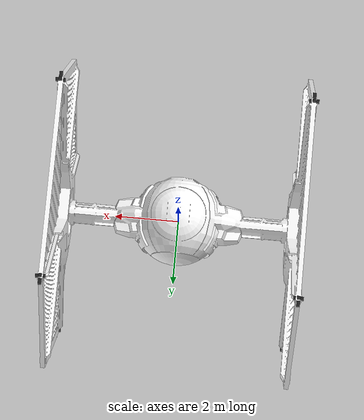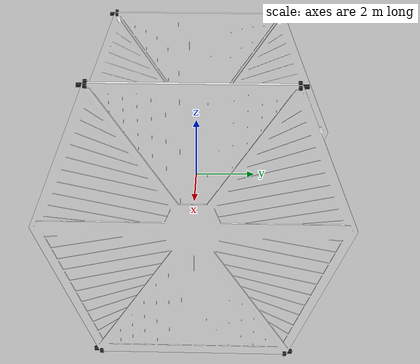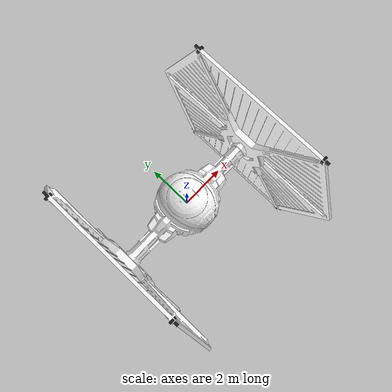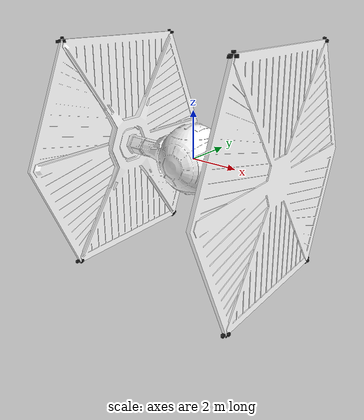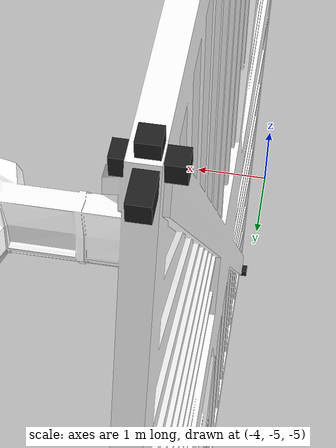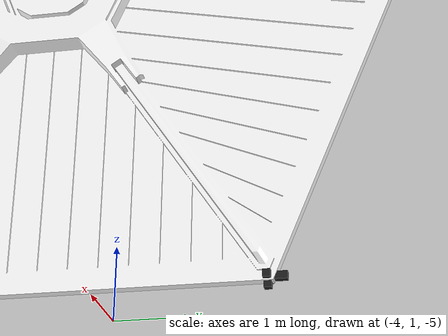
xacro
<?xml version="1.0"?>
<robot xmlns:xacro="http://www.ros.org/wiki/xacro" name="tie_fighter">

 <xacro:include filename="$(find gazebo_spaceship)/urdf/thruster.urdf.xacro"/>

    <material name="white">
      <color rgba="1 1 1 1"/>
    </material>

    <link name="base_link">
      <visual>
        <geometry>
          <mesh filename="package://gazebo_spaceship/meshes/tie_fighter.stl" />
        </geometry>
        <material name="white"/>
      </visual>
      <collision>
        <geometry>
          <mesh filename="package://gazebo_spaceship/meshes/tie_fighter.stl" />
        </geometry>
      </collision>
      <inertial>
         <mass value="1.0"/>
         <inertia
        ixx="1.0" ixy="0.0" ixz="0.0"
        iyy="1.0" iyz="0.0"
        izz="1.0"/>
      </inertial>
    </link>

    <xacro:thruster name="top_left_front_thruster" thruster_name="0">
      <origin xyz="3.8 3 4.6" rpy="0 0 0"/>
    </xacro:thruster>

    <xacro:thruster name="top_left_back_thruster" thruster_name="1">
      <origin xyz="3.8 -3 4.6" rpy="0 0 0"/>
    </xacro:thruster>

    <xacro:thruster name="top_right_front_thruster" thruster_name="2">
      <origin xyz="-3.8 3 4.6" rpy="0 0 0"/>
    </xacro:thruster>

    <xacro:thruster name="top_right_back_thruster" thruster_name="4">
      <origin xyz="-3.8 -3 4.6" rpy="0 0 0"/>
    </xacro:thruster>

    <xacro:thruster name="bottom_left_front_thruster" thruster_name="5">
      <origin xyz="3.8 3 -4.6" rpy="0 ${pi} 0"/>
    </xacro:thruster>

    <xacro:thruster name="bottom_left_back_thruster" thruster_name="6">
      <origin xyz="3.8 -3 -4.6" rpy="0 ${pi} 0"/>
    </xacro:thruster>

    <xacro:thruster name="bottom_right_front_thruster" thruster_name="6">
      <origin xyz="-3.8 3 -4.6" rpy="0 ${pi} 0"/>
    </xacro:thruster>

    <xacro:thruster name="bottom_right_back_thruster" thruster_name="7">
      <origin xyz="-3.8 -3 -4.6" rpy="0 ${pi} 0"/>
    </xacro:thruster>

    <xacro:thruster name="side_top_left_front_thruster" thruster_name="8">
      <origin xyz="3.8 3 4.6" rpy="0 ${pi/2} 0"/>
    </xacro:thruster>

    <xacro:thruster name="side_top_left_back_thruster" thruster_name="9">
      <origin xyz="3.8 -3 4.6" rpy="0 ${pi/2} 0"/>
    </xacro:thruster>

    <xacro:thruster name="side_bottom_left_front_thruster" thruster_name="10">
      <origin xyz="3.8 3 -4.6" rpy="0 ${pi/2} 0"/>
    </xacro:thruster>

    <xacro:thruster name="side_bottom_left_back_thruster" thruster_name="11">
      <origin xyz="3.8 -3 -4.6" rpy="0 ${pi/2} 0"/>
    </xacro:thruster>

    <xacro:thruster name="side_top_right_front_thruster" thruster_name="12">
      <origin xyz="-3.8 3 4.6" rpy="0 ${-pi/2} 0"/>
    </xacro:thruster>

    <xacro:thruster name="side_top_right_back_thruster" thruster_name="13">
      <origin xyz="-3.8 -3 4.6" rpy="0 ${-pi/2} 0"/>
    </xacro:thruster>

    <xacro:thruster name="side_bottom_right_front_thruster" thruster_name="14">
      <origin xyz="-3.8 3 -4.6" rpy="0 ${-pi/2} 0"/>
    </xacro:thruster>

    <xacro:thruster name="side_bottom_right_back_thruster" thruster_name="15">
      <origin xyz="-3.8 -3 -4.6" rpy="0 ${-pi/2} 0"/>
    </xacro:thruster>

    <xacro:thruster name="front_top_left_thruster" thruster_name="16">
      <origin xyz="3.8 3.1 4.6" rpy="${-pi/2} 0 0"/>
    </xacro:thruster>

    <xacro:thruster name="front_top_right_thruster" thruster_name="17">
      <origin xyz="-3.8 3.1 4.6" rpy="${-pi/2} 0 0"/>
    </xacro:thruster>

    <xacro:thruster name="front_bottom_left_thruster" thruster_name="18">
      <origin xyz="3.8 3.1 -4.6" rpy="${-pi/2} 0 0"/>
    </xacro:thruster>

    <xacro:thruster name="front_bottom_right_thruster" thruster_name="19">
      <origin xyz="-3.8 3.1 -4.6" rpy="${-pi/2} 0 0"/>
    </xacro:thruster>

    <xacro:thruster name="back_top_left_thruster" thruster_name="20">
      <origin xyz="3.8 -3.1 4.6" rpy="${pi/2} 0 0"/>
    </xacro:thruster>

    <xacro:thruster name="back_top_right_thruster" thruster_name="21">
      <origin xyz="-3.8 -3.1 4.6" rpy="${pi/2} 0 0"/>
    </xacro:thruster>

    <xacro:thruster name="back_bottom_left_thruster" thruster_name="22">
      <origin xyz="3.8 -3.1 -4.6" rpy="${pi/2} 0 0"/>
    </xacro:thruster>

    <xacro:thruster name="back_bottom_right_thruster" thruster_name="23">
      <origin xyz="-3.8 -3.1 -4.6" rpy="${pi/2} 0 0"/>
    </xacro:thruster>

    <gazebo reference="base_link">
      <material>Gazebo/White</material>
    </gazebo>

    <gazebo>
    <plugin name="joint_state_publisher" filename="libjoint_state_publisher.so">
      <robotNamespace></robotNamespace>
      <updateRate>50</updateRate>
    </plugin>
  </gazebo>

</robot>

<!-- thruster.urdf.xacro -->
<robot xmlns:xacro="http://www.ros.org/wiki/xacro">
  <xacro:macro name="thruster" params="name thruster_name *origin ">

    <link name="${name}_base_link">
      <visual>
        <geometry>
          <box size="0.1 0.1 0.3"/>
        </geometry>
        <material name="black"/>
      </visual>
      <inertial>
        <mass value="0.001" />
        <origin xyz="0 0 0" rpy="0 0 0"/>
        <inertia ixx="0.000000017" ixy="0.0" ixz="0.0"
               iyy="0.000000017" iyz="0.0"
               izz="0.000000017" />
      </inertial>
    </link>

    <joint name="${name}_joint" type="continuous" >
      <parent link="base_link" />
      <child link="${name}_base_link" />
      <xacro:insert_block name="origin" />
    </joint>

    <gazebo>
      <plugin name="${name}_thruster_model" filename="libair_thruster_ros_plugin.so">
        <linkName>${name}_base_link</linkName>
         <thrusterName>${thruster_name}</thrusterName>
        <inputTopic>/thrusters/${name}/input</inputTopic>
      </plugin>
    </gazebo>

    <gazebo reference="thruster_${name}">
      <selfCollide>false</selfCollide>
    </gazebo>

  </xacro:macro>
</robot>
